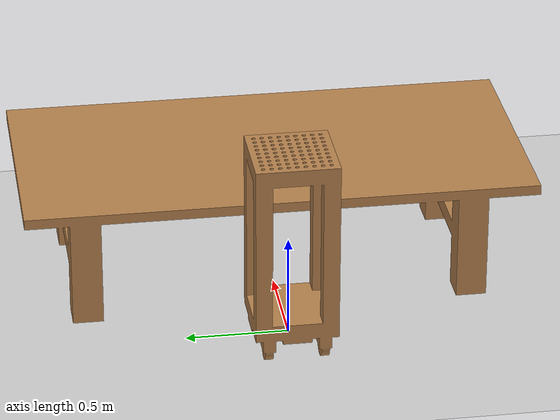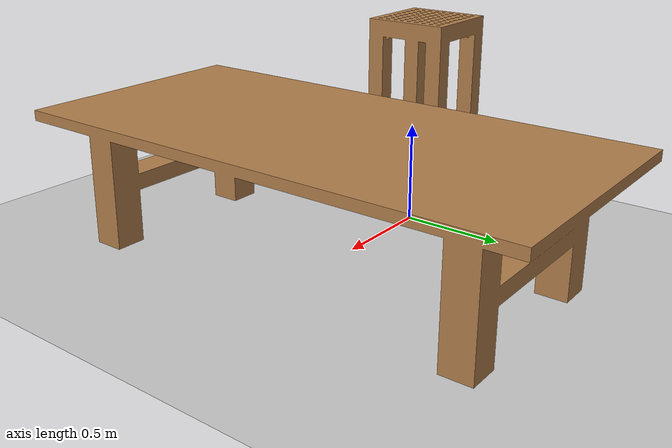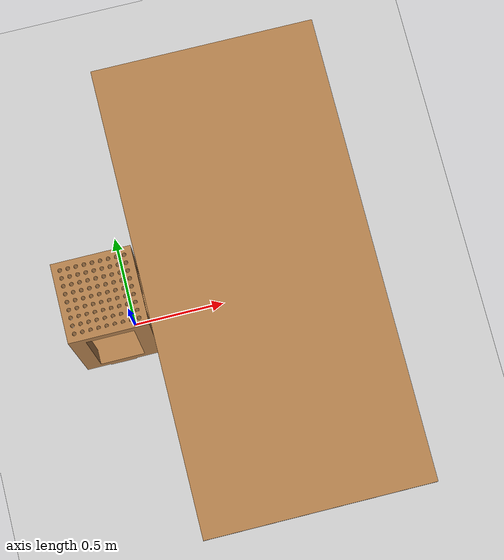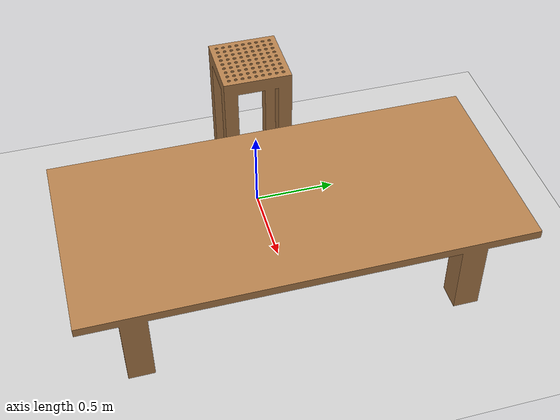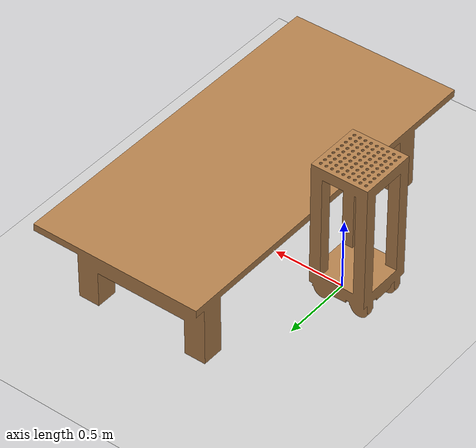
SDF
<sdf version="1.7">
 <world name="panda_pick_and_place">
  <light name="sun" type="directional">
   <pose>0 0 10 0 -0 0</pose>
   <diffuse>0.8 0.8 0.8 1</diffuse>
   <specular>0.2 0.2 0.2 1</specular>
   <attenuation>
    <range>1000</range>
    <constant>0.9</constant>
    <linear>0.01</linear>
    <quadratic>0.001</quadratic>
   </attenuation>
   <direction>-0.5 0.1 -0.9</direction>
   <spot><inner_angle>0</inner_angle><outer_angle>0</outer_angle><falloff>0</falloff></spot>
  </light>
  <model name="ground_plane">
   <static>1</static>
   <link name="link">
    <collision name="collision">
     <geometry><plane><normal>0 0 1</normal><size>100 100</size></plane></geometry>
     <surface>
      <contact><collide_bitmask>65535</collide_bitmask></contact>
      <friction><ode><mu>100</mu><mu2>50</mu2></ode></friction>
     </surface>
    </collision>
    <visual name="visual">
     <cast_shadows>0</cast_shadows>
     <geometry><plane><normal>0 0 1</normal><size>100 100</size></plane></geometry>
     <material>
      <script><uri>file://media/materials/scripts/gazebo.material</uri><name>Gazebo/Grey</name></script>
     </material>
    </visual>
   </link>
  </model>
  <gravity>0 0 -9.8</gravity>
  <magnetic_field>6e-06 2.3e-05 -4.2e-05</magnetic_field>
  <atmosphere type="adiabatic"/>
  <physics type="ode">
   <max_step_size>0.001</max_step_size>
   <real_time_factor>1</real_time_factor>
   <real_time_update_rate>1000</real_time_update_rate>
  </physics>
  <scene><ambient>0.4 0.4 0.4 1</ambient><background>0.7 0.7 0.7 1</background><shadows>1</shadows></scene>
  <spherical_coordinates>
   <surface_model>EARTH_WGS84</surface_model>
   <latitude_deg>0</latitude_deg>
   <longitude_deg>0</longitude_deg>
   <elevation>0</elevation>
   <heading_deg>0</heading_deg>
  </spherical_coordinates>
  <model name="bed">
   <link name="link_0">
    <inertial>
     <mass>1</mass>
     <inertia>
      <ixx>0.166667</ixx>
      <ixy>0</ixy>
      <ixz>0</ixz>
      <iyy>0.166667</iyy>
      <iyz>0</iyz>
      <izz>0.166667</izz>
     </inertia>
     <pose>0 0 0 1.5708 -0 0</pose>
    </inertial>
    <visual name="visual">
     <pose>0 0 0 1.5708 -0 0</pose>
     <geometry>
      <mesh>
       <uri>/home/catkin_ws/src/franka_panda_gazebo_D435/franka_gazebo/models/bed/bed.stl</uri>
       <scale>1 1 1</scale>
      </mesh>
     </geometry>
     <material>
      <lighting>1</lighting>
      <script><uri>file://media/materials/scripts/gazebo.material</uri><name>Gazebo/Wood</name></script>
      <shader type="pixel"><normal_map>__default__</normal_map></shader>
      <ambient>0.3 0.3 0.3 1</ambient>
      <diffuse>0.7 0.7 0.7 1</diffuse>
      <specular>0.01 0.01 0.01 1</specular>
      <emissive>0 0 0 1</emissive>
     </material>
    </visual>
    <collision name="collision">
     <geometry>
      <mesh>
       <uri>/home/catkin_ws/src/franka_panda_gazebo_D435/franka_gazebo/models/bed/bed.stl</uri>
       <scale>1 1 1</scale>
      </mesh>
     </geometry>
     <surface>
      <friction>
       <ode><mu>1</mu><mu2>1</mu2><fdir1>0 0 0</fdir1><slip1>0</slip1><slip2>0</slip2></ode>
       <torsional>
        <coefficient>1</coefficient>
        <patch_radius>0</patch_radius>
        <surface_radius>0</surface_radius>
        <use_patch_radius>1</use_patch_radius>
        <ode><slip>0</slip></ode>
       </torsional>
      </friction>
      <bounce><restitution_coefficient>0</restitution_coefficient><threshold>1e+06</threshold></bounce>
      <contact>
       <collide_without_contact>0</collide_without_contact>
       <collide_without_contact_bitmask>1</collide_without_contact_bitmask>
       <collide_bitmask>1</collide_bitmask>
       <ode>
        <soft_cfm>0</soft_cfm>
        <soft_erp>0.2</soft_erp>
        <kp>1e+13</kp>
        <kd>1</kd>
        <max_vel>0.01</max_vel>
        <min_depth>0</min_depth>
       </ode>
       <bullet>
        <split_impulse>1</split_impulse>
        <split_impulse_penetration_threshold>-0.01</split_impulse_penetration_threshold>
        <soft_cfm>0</soft_cfm>
        <soft_erp>0.2</soft_erp>
        <kp>1e+13</kp>
        <kd>1</kd>
       </bullet>
      </contact>
     </surface>
    </collision>
   </link>
   <static>1</static>
   <pose>0.1 1.25 0 0 -0 0</pose>
  </model>
  <model name="robotbase">
   <link name="link_1">
    <inertial>
     <mass>1</mass>
     <inertia>
      <ixx>0.166667</ixx>
      <ixy>0</ixy>
      <ixz>0</ixz>
      <iyy>0.166667</iyy>
      <iyz>0</iyz>
      <izz>0.166667</izz>
     </inertia>
     <pose>0 0 0 1.5708 -0 0</pose>
    </inertial>
    <visual name="visual">
     <pose>0 0 0 1.5708 -0 0</pose>
     <geometry>
      <mesh>
       <uri>/home/catkin_ws/src/franka_panda_gazebo_D435/franka_gazebo/models/robotbase/robotbase.stl</uri>
       <scale>1 1 1</scale>
      </mesh>
     </geometry>
     <material>
      <lighting>1</lighting>
      <script><uri>file://media/materials/scripts/gazebo.material</uri><name>Gazebo/Wood</name></script>
      <shader type="pixel"><normal_map>__default__</normal_map></shader>
      <ambient>0.3 0.3 0.3 1</ambient>
      <diffuse>0.7 0.7 0.7 1</diffuse>
      <specular>0.01 0.01 0.01 1</specular>
      <emissive>0 0 0 1</emissive>
     </material>
    </visual>
    <collision name="collision">
     <geometry>
      <mesh>
       <uri>/home/catkin_ws/src/franka_panda_gazebo_D435/franka_gazebo/models/robotbase/robotbase.stl</uri>
       <scale>1 1 1</scale>
      </mesh>
     </geometry>
     <surface>
      <friction>
       <ode><mu>1</mu><mu2>1</mu2><fdir1>0 0 0</fdir1><slip1>0</slip1><slip2>0</slip2></ode>
       <torsional>
        <coefficient>1</coefficient>
        <patch_radius>0</patch_radius>
        <surface_radius>0</surface_radius>
        <use_patch_radius>1</use_patch_radius>
        <ode><slip>0</slip></ode>
       </torsional>
      </friction>
      <bounce><restitution_coefficient>0</restitution_coefficient><threshold>1e+06</threshold></bounce>
      <contact>
       <collide_without_contact>0</collide_without_contact>
       <collide_without_contact_bitmask>1</collide_without_contact_bitmask>
       <collide_bitmask>1</collide_bitmask>
       <ode>
        <soft_cfm>0</soft_cfm>
        <soft_erp>0.2</soft_erp>
        <kp>1e+13</kp>
        <kd>1</kd>
        <max_vel>0.01</max_vel>
        <min_depth>0</min_depth>
       </ode>
       <bullet>
        <split_impulse>1</split_impulse>
        <split_impulse_penetration_threshold>-0.01</split_impulse_penetration_threshold>
        <soft_cfm>0</soft_cfm>
        <soft_erp>0.2</soft_erp>
        <kp>1e+13</kp>
        <kd>1</kd>
       </bullet>
      </contact>
     </surface>
    </collision>
   </link>
   <static>1</static>
   <pose>-0.3 0.2 0 0 -0 0</pose>
  </model>
 </world>
</sdf>
